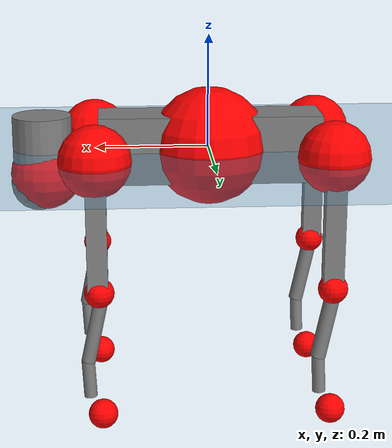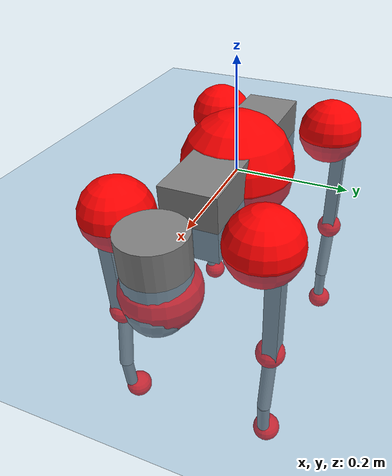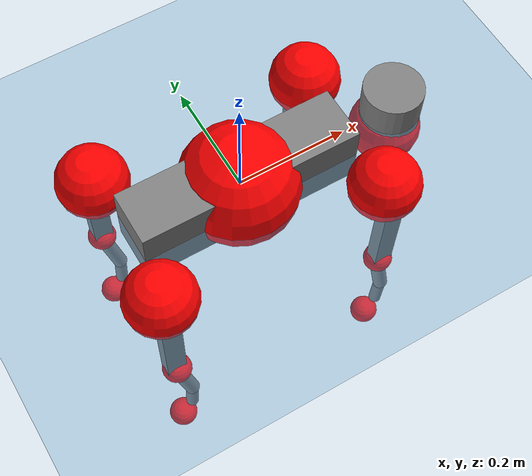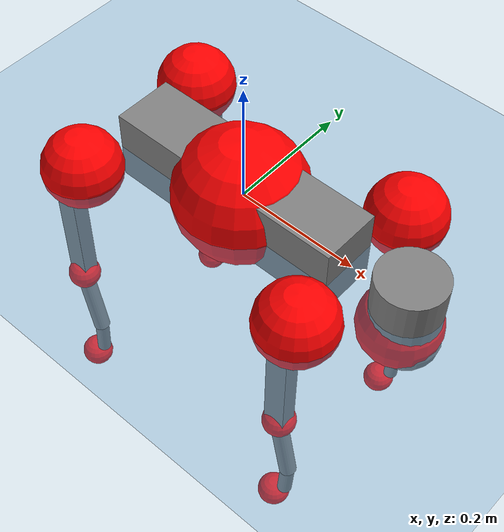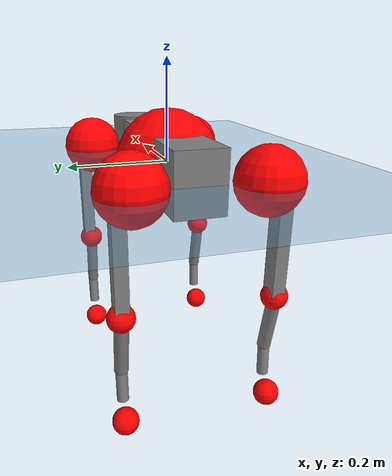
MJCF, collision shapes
<mujoco model="go2">
  <compiler angle="radian" assetdir="assets" balanceinertia="true" inertiafromgeom="false"/>

  <option timestep="0.005" density="1.2" viscosity="2e-05"/>

  <size nkey="1"/>

  <visual>
    <quality shadowsize="8192"/>
    <map shadowclip="0.5"/>
  </visual>

  <default>
    <default class="/">
      <geom contype="0" conaffinity="0" group="1" solref="-1000 -80"/>
      <site size="0.01 0.005 0.005" group="5"/>
      <general forcelimited="true" biastype="affine" gainprm="20" biasprm="0 -20 -0.5"/>
      <default class="go2">
        <joint armature="0.01" damping="0.01" frictionloss="0.2"/>
        <geom condim="1" margin="0.001"/>
        <default class="visual">
          <geom type="mesh" group="2"/>
        </default>
        <default class="collision">
          <geom group="3"/>
          <default class="foot">
            <geom size="0.022 0 0" condim="6" priority="1" friction="0.8 0.02 0.01" solimp="0.015 1 0.022"/>
          </default>
        </default>
        <default class="reward_collision_sphere">
          <geom group="5" rgba="1 0 0 1"/>
        </default>
      </default>
    </default>
  </default>

  <asset>
    <texture type="skybox" colorspace="auto" name="//unnamed_texture_0" builtin="gradient" rgb1="0.95 0.95 0.95" rgb2="0.95 0.95 0.95" width="100" height="600"/>
    <texture type="2d" colorspace="auto" name="texplane" builtin="checker" rgb1="0.345 0.575 0.748" rgb2="0.345 0.575 0.748" markrgb="1 1 1" width="512" height="512"/>
    <material name="MatPlane" class="/" texture="texplane" texuniform="true" texrepeat="2 2" specular="0.9"/>
    <material name="metal" class="/" rgba="0.9 0.95 0.95 1"/>
    <material name="black" class="/" rgba="0 0 0 1"/>
    <material name="white" class="/"/>
    <material name="gray" class="/" rgba="0.671705 0.692426 0.77427 1"/>
    <mesh name="base_0" class="/" file="base_0.obj"/>
    <mesh name="base_1" class="/" file="base_1.obj"/>
    <mesh name="base_2" class="/" file="base_2.obj"/>
    <mesh name="base_3" class="/" file="base_3.obj"/>
    <mesh name="base_4" class="/" file="base_4.obj"/>
    <mesh name="hip_0" class="/" file="hip_0.obj"/>
    <mesh name="hip_1" class="/" file="hip_1.obj"/>
    <mesh name="thigh_0" class="/" file="thigh_0.obj"/>
    <mesh name="thigh_1" class="/" file="thigh_1.obj"/>
    <mesh name="thigh_mirror_0" class="/" file="thigh_mirror_0.obj"/>
    <mesh name="thigh_mirror_1" class="/" file="thigh_mirror_1.obj"/>
    <mesh name="calf_0" class="/" file="calf_0.obj"/>
    <mesh name="calf_1" class="/" file="calf_1.obj"/>
    <mesh name="calf_mirror_0" class="/" file="calf_mirror_0.obj"/>
    <mesh name="calf_mirror_1" class="/" file="calf_mirror_1.obj"/>
    <mesh name="foot" class="/" file="foot.obj"/>
  </asset>

  <worldbody>
    <geom name="floor" class="/" size="100 100 0.125" type="plane" group="0" material="MatPlane"/>
    <light name="toplight_shadow" class="/" pos="0 0 5" dir="0.0990148 0.0990148 -0.990148" type="directional" ambient="0.04 0.04 0.04" diffuse="0.55 0.55 0.55" specular="0.12 0.12 0.12"/>
    <light name="toplight_fill" class="/" pos="0 0 5" dir="0.0990148 0.0990148 -0.990148" type="directional" castshadow="false" ambient="0.04 0.04 0.04" diffuse="0.3 0.3 0.3" specular="0.08 0.08 0.08"/>
    <body name="trunk" childclass="go2" pos="-0.0023292 -0.0006725 0.00183261" quat="1 -0.000371652 0.000399033 -4.56272e-05">
      <inertial pos="0.0281514 0.00326948 -0.0071073" quat="0.00556523 0.712326 -0.0121278 0.701722" mass="7.58857" diaginertia="0.131341 0.119219 0.0351855"/>
      <joint name="//unnamed_joint_0" type="free" armature="0" damping="0" frictionloss="0"/>
      <geom name="//unnamed_geom_1" class="visual" material="black" mesh="base_0"/>
      <geom name="//unnamed_geom_2" class="visual" material="black" mesh="base_1"/>
      <geom name="//unnamed_geom_3" class="visual" material="black" mesh="base_2"/>
      <geom name="//unnamed_geom_4" class="visual" material="white" mesh="base_3"/>
      <geom name="//unnamed_geom_5" class="visual" material="gray" mesh="base_4"/>
      <geom name="trunk_1" class="collision" size="0.197001 0.0489624 0.0596974" type="box"/>
      <geom name="trunk_2" class="collision" size="0.0523662 0.0471295" pos="0.296502 0 0.0106549" type="cylinder"/>
      <geom name="trunk_3" class="collision" size="0.0492242" pos="0.304824 0 -0.0639296"/>
      <geom name="//unnamed_geom_9" class="reward_collision_sphere" size="0.104732"/>
      <geom name="//unnamed_geom_10" class="reward_collision_sphere" size="0.0628394" pos="0.2913 0 -0.0479472"/>
      <site name="imu" pos="-0.0486791 -0.00198429 0.0669106" size="0.0104732"/>
      <camera name="track" pos="0 -2.07224 0" quat="0.707107 0.707107 0 0" mode="trackcom"/>
      <camera name="ego_camera" pos="0.324591 0 0.0479472" quat="-0.5 -0.5 0.5 0.5"/>
      <body name="FL_hip" pos="0.203174 0.0508241 0.00239276" quat="0.999999 0.00053488 0.000587874 0.000849442">
        <inertial pos="-0.00552252 0.00389857 -0.00157007" quat="0.496859 0.499583 0.50553 0.497984" mass="0.845219" diaginertia="0.00115705 0.000791631 0.00070643"/>
        <joint name="FL_hip_joint" pos="0 0 0" axis="0.999995 -0.0027702 0.00115218" stiffness="0.00514015" range="-1.05302 1.07434" armature="0.0108432" damping="0.00713254" frictionloss="0.219021"/>
        <geom name="//unnamed_geom_11" class="visual" material="metal" mesh="hip_0"/>
        <geom name="//unnamed_geom_12" class="visual" material="gray" mesh="hip_1"/>
        <geom name="//unnamed_geom_13" class="collision" size="0.0481769 0.0209465" pos="0 0.0828896 0" quat="0.707107 0.707107 0 0" type="cylinder"/>
        <geom name="//unnamed_geom_14" class="reward_collision_sphere" size="0.0628394" pos="0 0.0725284 0"/>
        <body name="FL_thigh" pos="-0.000181034 0.093845 2.4069e-05" quat="0.999998 0.000475565 0.00125932 -0.00144443">
          <inertial pos="-0.00312885 -0.023635 -0.0345943" quat="0.829418 0.0837914 -0.00946832 0.552227" mass="1.31548" diaginertia="0.00710401 0.00730293 0.00121212"/>
          <joint name="FL_thigh_joint" pos="0 0 0" axis="-0.00846416 0.999956 -0.00399967" range="-1.6406 3.47417" armature="0.00929514" damping="0" frictionloss="0.208807"/>
          <geom name="//unnamed_geom_15" class="visual" material="metal" mesh="thigh_0"/>
          <geom name="//unnamed_geom_16" class="visual" material="gray" mesh="thigh_1"/>
          <geom name="//unnamed_geom_17" class="collision" size="0.11154 0.0128297 0.0178045" pos="0 0 -0.113475" quat="0.707107 0 0.707107 0" type="box"/>
          <body name="FL_calf" pos="-0.0023239 -0.00372292 -0.227881" quat="0.999999 0.000237503 -0.000779231 -0.000807032">
            <inertial pos="0.00706976 0.00191675 -0.151211" quat="0.710445 0.00131125 -0.00450302 0.703738" mass="0.26639" diaginertia="0.0018234 0.00173424 7.29287e-05"/>
            <joint name="FL_calf_joint" pos="0 0 0" axis="0.00539748 0.999985 0.000473389" stiffness="0.0161469" range="-2.73774 -0.843525" armature="0.0114049" damping="0.0101896" frictionloss="0.206539"/>
            <geom name="//unnamed_geom_18" class="visual" material="gray" mesh="calf_0"/>
            <geom name="//unnamed_geom_19" class="visual" material="black" mesh="calf_1"/>
            <geom name="FL_calf0" class="collision" size="0.0125679 0.0628394" pos="0.00832285 0 -0.0639296" quat="0.994493 0 -0.104807 0" type="cylinder"/>
            <geom name="//unnamed_geom_21" class="collision" size="0.0115206 0.034038" pos="0.0208071 0 -0.157693" quat="0.999688 0 0.0249974 0" type="cylinder"/>
            <geom name="//unnamed_geom_22" class="visual" pos="0 0 -0.22695" quat="1 0 0 0" material="black" mesh="foot"/>
            <geom name="FL_foot" class="foot" size="0.0214791" pos="-0.00208071 0 -0.22695"/>
            <geom name="//unnamed_geom_24" class="reward_collision_sphere" size="0.0261831"/>
            <geom name="//unnamed_geom_25" class="reward_collision_sphere" size="0.0261831" pos="-0.00208071 0 -0.22695"/>
            <site name="FL_foot" class="foot" pos="-0.00208071 0 -0.22695" size="0.0104732"/>
          </body>
        </body>
      </body>
      <body name="FR_hip" pos="0.205907 -0.0476002 -0.00168364" quat="1 0.000141582 0.000210247 3.99582e-05">
        <inertial pos="-0.00508524 0.00453235 0.000570152" quat="0.512656 0.50252 0.508244 0.475758" mass="0.7866" diaginertia="0.00114218 0.000693886 0.000694429"/>
        <joint name="FR_hip_joint" pos="0 0 0" axis="0.999909 0.0128453 -0.00419096" stiffness="0.0102722" range="-0.998942 1.06976" armature="0.00978442" damping="0.0189975" frictionloss="0.227206"/>
        <geom name="//unnamed_geom_26" class="visual" pos="0 -2.55881e-10 -1.09753e-08" quat="4.63268e-05 1 0 0" material="metal" mesh="hip_0"/>
        <geom name="//unnamed_geom_27" class="visual" pos="0 -4.14814e-10 2.71461e-08" quat="4.63268e-05 1 0 0" material="gray" mesh="hip_1"/>
        <geom name="//unnamed_geom_28" class="collision" size="0.0481769 0.0209465" pos="0 -0.0828896 0" quat="0.707107 0.707107 0 0" type="cylinder"/>
        <geom name="//unnamed_geom_29" class="reward_collision_sphere" size="0.0628394" pos="0 -0.0725284 0"/>
        <body name="FR_thigh" pos="0.000238948 -0.0987712 0.00367471" quat="0.999999 -0.000462499 0.00108542 -0.000989752">
          <inertial pos="-0.00858136 0.0211418 -0.0348133" quat="0.551529 -0.0198429 0.0841093 0.829667" mass="1.24741" diaginertia="0.00707789 0.0070018 0.00110457"/>
          <joint name="FR_thigh_joint" pos="0 0 0" axis="0.00350596 -0.999989 0.00299248" range="-3.45433 1.5187" armature="0.0108173" damping="0.00289667" frictionloss="0.223357"/>
          <geom name="//unnamed_geom_30" class="visual" material="metal" mesh="thigh_mirror_0"/>
          <geom name="//unnamed_geom_31" class="visual" material="gray" mesh="thigh_mirror_1"/>
          <geom name="//unnamed_geom_32" class="collision" size="0.11154 0.0128297 0.0178045" pos="0 0 -0.113475" quat="0.707107 0 0.707107 0" type="box"/>
          <body name="FR_calf" pos="-0.000176765 0.00139945 -0.224701" quat="1 -1.23153e-05 1.14817e-05 -6.07155e-06">
            <inertial pos="0.00856145 0.000728444 -0.151388" quat="0.686003 -0.0143734 -0.00266184 0.727452" mass="0.269311" diaginertia="0.00179639 0.00167795 7.02598e-05"/>
            <joint name="FR_calf_joint" pos="0 0 0" axis="0.00396343 -0.999911 -0.0127392" stiffness="0.0217511" range="0.93135 2.72521" armature="0.00911663" damping="0" frictionloss="0.22071"/>
            <geom name="//unnamed_geom_33" class="visual" material="gray" mesh="calf_mirror_0"/>
            <geom name="//unnamed_geom_34" class="visual" material="black" mesh="calf_mirror_1"/>
            <geom name="FR_calf0" class="collision" size="0.0136152 0.0628394" pos="0.0104036 0 -0.0639296" quat="0.995004 0 -0.0998334 0" type="cylinder"/>
            <geom name="//unnamed_geom_36" class="collision" size="0.0115206 0.034038" pos="0.0208071 0 -0.157693" quat="0.999688 0 0.0249974 0" type="cylinder"/>
            <geom name="//unnamed_geom_37" class="visual" pos="0 0 -0.22695" quat="1 0 0 0" material="black" mesh="foot"/>
            <geom name="FR_foot" class="foot" size="0.0252856" pos="-0.00208071 0 -0.22695"/>
            <geom name="//unnamed_geom_39" class="reward_collision_sphere" size="0.0261831"/>
            <geom name="//unnamed_geom_40" class="reward_collision_sphere" size="0.0261831" pos="-0.00208071 0 -0.22695"/>
            <site name="FR_foot" class="foot" pos="-0.00208071 0 -0.22695" size="0.0104732"/>
          </body>
        </body>
      </body>
      <body name="RL_hip" pos="-0.204726 0.0490958 0.00379814" quat="1 -0.000152353 0.000287107 0.000209821">
        <inertial pos="0.00573635 0.00108672 0.00576318" quat="0.50833 0.490032 0.494479 0.506913" mass="0.729261" diaginertia="0.000930713 0.000648925 0.000617282"/>
        <joint name="RL_hip_joint" pos="0 0 0" axis="-0.99992 -0.00716881 -0.0104029" range="-1.03789 1.08229" armature="0.00932253" damping="0.0298098" frictionloss="0.205774"/>
        <geom name="//unnamed_geom_41" class="visual" pos="2.18978e-10 0 4.29248e-08" quat="4.63268e-05 0 1 0" material="metal" mesh="hip_0"/>
        <geom name="//unnamed_geom_42" class="visual" pos="3.5499e-10 0 3.80681e-08" quat="4.63268e-05 0 1 0" material="gray" mesh="hip_1"/>
        <geom name="//unnamed_geom_43" class="collision" size="0.0481769 0.0209465" pos="0 0.0828896 0" quat="0.707107 0.707107 0 0" type="cylinder"/>
        <geom name="//unnamed_geom_44" class="reward_collision_sphere" size="0.0628394" pos="0 0.0725284 0"/>
        <body name="RL_thigh" pos="0.000475241 0.0969125 2.55808e-05" quat="1 7.39631e-05 -0.000575213 -0.000551967">
          <inertial pos="0.00233906 -0.0210858 -0.0297709" quat="0.828264 0.085328 -0.0190961 0.553473" mass="1.3208" diaginertia="0.00789364 0.00697625 0.00125178"/>
          <joint name="RL_thigh_joint" pos="0 0 0" axis="-0.00975885 0.999725 0.0213463" range="-0.534446 4.55528" armature="0.0117867" damping="0.0180227" frictionloss="0.212521"/>
          <geom name="//unnamed_geom_45" class="visual" material="metal" mesh="thigh_0"/>
          <geom name="//unnamed_geom_46" class="visual" material="gray" mesh="thigh_1"/>
          <geom name="//unnamed_geom_47" class="collision" size="0.11154 0.0128297 0.0178045" pos="0 0 -0.113475" quat="0.707107 0 0.707107 0" type="box"/>
          <body name="RL_calf" pos="-0.000959351 0.00035238 -0.2284" quat="1 -0.00044868 0.000254682 1.00398e-05">
            <inertial pos="0.00705214 -0.0042505 -0.152709" quat="0.711607 8.53585e-05 -0.00602218 0.702552" mass="0.255626" diaginertia="0.00169197 0.00154195 6.89197e-05"/>
            <joint name="RL_calf_joint" pos="0 0 0" axis="0.00359729 0.999904 0.0133971" stiffness="0.00301125" range="-2.78771 -0.812263" armature="0.00815293" damping="0" frictionloss="0.238382"/>
            <geom name="//unnamed_geom_48" class="visual" material="gray" mesh="calf_0"/>
            <geom name="//unnamed_geom_49" class="visual" material="black" mesh="calf_1"/>
            <geom name="RL_calf0" class="collision" size="0.0136152 0.0628394" pos="0.0104036 0 -0.0639296" quat="0.995004 0 -0.0998334 0" type="cylinder"/>
            <geom name="//unnamed_geom_51" class="collision" size="0.0115206 0.034038" pos="0.0208071 0 -0.157693" quat="0.999688 0 0.0249974 0" type="cylinder"/>
            <geom name="//unnamed_geom_52" class="visual" pos="0 0 -0.22695" quat="1 0 0 0" material="black" mesh="foot"/>
            <geom name="RL_foot" class="foot" size="0.021532" pos="-0.00208071 0 -0.22695"/>
            <geom name="//unnamed_geom_54" class="reward_collision_sphere" size="0.0261831"/>
            <geom name="//unnamed_geom_55" class="reward_collision_sphere" size="0.0261831" pos="-0.00208071 0 -0.22695"/>
            <site name="RL_foot" class="foot" pos="-0.00208071 0 -0.22695" size="0.0104732"/>
          </body>
        </body>
      </body>
      <body name="RR_hip" pos="-0.207445 -0.0465475 0.00138354" quat="0.999999 -0.00102182 -0.000390738 0.000632598">
        <inertial pos="0.00582315 -0.00165904 0.00479319" quat="0.504896 0.511877 0.470271 0.511769" mass="0.807472" diaginertia="0.00114887 0.00076132 0.000710442"/>
        <joint name="RR_hip_joint" pos="0 0 0" axis="-0.999775 -0.0194953 -0.00833258" stiffness="0.00121386" range="-0.972416 1.05716" armature="0.00967253" damping="0.0077421" frictionloss="0.212045"/>
        <geom name="//unnamed_geom_56" class="visual" pos="-2.19125e-10 -2.55881e-10 5.39e-08" quat="2.14617e-09 4.63268e-05 4.63268e-05 -1" material="metal" mesh="hip_0"/>
        <geom name="//unnamed_geom_57" class="visual" pos="-3.54627e-10 -4.14814e-10 1.09221e-08" quat="2.14617e-09 4.63268e-05 4.63268e-05 -1" material="gray" mesh="hip_1"/>
        <geom name="//unnamed_geom_58" class="collision" size="0.0481769 0.0209465" pos="0 -0.0828896 0" quat="0.707107 0.707107 0 0" type="cylinder"/>
        <geom name="//unnamed_geom_59" class="reward_collision_sphere" size="0.0628394" pos="0 -0.0725284 0"/>
        <body name="RR_thigh" pos="-0.00521145 -0.0980819 0.00394375" quat="0.999999 -0.000370708 -0.0014108 -0.00070199">
          <inertial pos="-0.00369008 0.0230564 -0.0324174" quat="0.553608 -0.0180875 0.0843048 0.828302" mass="1.36236" diaginertia="0.00747243 0.00687436 0.00118124"/>
          <joint name="RR_thigh_joint" pos="0 0 0" axis="-0.00693047 -0.999959 -0.00584524" range="-4.54136 0.48145" armature="0.00919301" damping="0.0110937" frictionloss="0.217838"/>
          <geom name="//unnamed_geom_60" class="visual" material="metal" mesh="thigh_mirror_0"/>
          <geom name="//unnamed_geom_61" class="visual" material="gray" mesh="thigh_mirror_1"/>
          <geom name="//unnamed_geom_62" class="collision" size="0.11154 0.0128297 0.0178045" pos="0 0 -0.113475" quat="0.707107 0 0.707107 0" type="box"/>
          <body name="RR_calf" pos="0.00284211 -0.0033176 -0.230271" quat="0.999997 -0.00215354 -0.000139725 0.000650312">
            <inertial pos="0.00395993 -0.000351181 -0.148496" quat="0.705617 -0.00468686 -0.00808175 0.708532" mass="0.269104" diaginertia="0.00179606 0.00174511 7.17186e-05"/>
            <joint name="RR_calf_joint" pos="0 0 0" axis="-0.00400308 -0.999992 -0.000330591" stiffness="0.0089903" range="0.819094 2.64395" armature="0.0104075" damping="0" frictionloss="0.221154"/>
            <geom name="//unnamed_geom_63" class="visual" material="gray" mesh="calf_mirror_0"/>
            <geom name="//unnamed_geom_64" class="visual" material="black" mesh="calf_mirror_1"/>
            <geom name="RR_calf0" class="collision" size="0.0136152 0.0628394" pos="0.0104036 0 -0.0639296" quat="0.995004 0 -0.0998334 0" type="cylinder"/>
            <geom name="//unnamed_geom_66" class="collision" size="0.0115206 0.034038" pos="0.0208071 0 -0.157693" quat="0.999688 0 0.0249974 0" type="cylinder"/>
            <geom name="//unnamed_geom_67" class="visual" pos="0 0 -0.22695" quat="1 0 0 0" material="black" mesh="foot"/>
            <geom name="RR_foot" class="foot" size="0.0242646" pos="-0.00208071 0 -0.22695"/>
            <geom name="//unnamed_geom_69" class="reward_collision_sphere" size="0.0261831"/>
            <geom name="//unnamed_geom_70" class="reward_collision_sphere" size="0.0261831" pos="-0.00208071 0 -0.22695"/>
            <site name="RR_foot" class="foot" pos="-0.00208071 0 -0.22695" size="0.0104732"/>
          </body>
        </body>
      </body>
    </body>
  </worldbody>

  <contact>
    <pair class="/" geom1="floor" geom2="FL_foot" name="//unnamed_contact_0"/>
    <pair class="/" geom1="floor" geom2="FR_foot" name="//unnamed_contact_1"/>
    <pair class="/" geom1="floor" geom2="RL_foot" name="//unnamed_contact_2"/>
    <pair class="/" geom1="floor" geom2="RR_foot" name="//unnamed_contact_3"/>
  </contact>

  <actuator>
    <general name="FL_hip" class="/" joint="FL_hip_joint" forcerange="-26.8103 26.8103" gainprm="20.949" biasprm="0 -20.949 -0.522265"/>
    <general name="FL_thigh" class="/" joint="FL_thigh_joint" forcerange="-29.4121 29.4121" gainprm="20.949" biasprm="0 -20.949 -0.522265"/>
    <general name="FL_calf" class="/" joint="FL_calf_joint" forcerange="-44.1896 44.1896" gainprm="20.949" biasprm="0 -20.949 -0.522265"/>
    <general name="FR_hip" class="/" joint="FR_hip_joint" forcerange="-24.9799 24.9799" gainprm="20.949" biasprm="0 -20.949 -0.522265"/>
    <general name="FR_thigh" class="/" joint="FR_thigh_joint" forcerange="-23.5902 23.5902" gainprm="20.949" biasprm="0 -20.949 -0.522265"/>
    <general name="FR_calf" class="/" joint="FR_calf_joint" forcerange="-43.0657 43.0657" gainprm="20.949" biasprm="0 -20.949 -0.522265"/>
    <general name="RL_hip" class="/" joint="RL_hip_joint" forcerange="-25.483 25.483" gainprm="20.949" biasprm="0 -20.949 -0.522265"/>
    <general name="RL_thigh" class="/" joint="RL_thigh_joint" forcerange="-26.366 26.366" gainprm="20.949" biasprm="0 -20.949 -0.522265"/>
    <general name="RL_calf" class="/" joint="RL_calf_joint" forcerange="-50.5923 50.5923" gainprm="20.949" biasprm="0 -20.949 -0.522265"/>
    <general name="RR_hip" class="/" joint="RR_hip_joint" forcerange="-22.7756 22.7756" gainprm="20.949" biasprm="0 -20.949 -0.522265"/>
    <general name="RR_thigh" class="/" joint="RR_thigh_joint" forcerange="-21.7847 21.7847" gainprm="20.949" biasprm="0 -20.949 -0.522265"/>
    <general name="RR_calf" class="/" joint="RR_calf_joint" forcerange="-52.2932 52.2932" gainprm="20.949" biasprm="0 -20.949 -0.522265"/>
  </actuator>

  <sensor>
    <gyro site="imu" name="imu_angular_velocity"/>
    <velocimeter site="imu" name="imu_linear_velocity"/>
    <framelinvel objtype="site" objname="FL_foot" name="FL_foot_global_linear_velocity"/>
    <framelinvel objtype="site" objname="FR_foot" name="FR_foot_global_linear_velocity"/>
    <framelinvel objtype="site" objname="RL_foot" name="RL_foot_global_linear_velocity"/>
    <framelinvel objtype="site" objname="RR_foot" name="RR_foot_global_linear_velocity"/>
  </sensor>

  <keyframe>
    <key name="home" qpos="0 0 0.325 1 0 0 0 0.1 0.8 -1.5 -0.1 -0.8 1.5 -0.1 0.8 -1.5 0.1 -0.8 1.5"/>
  </keyframe>
</mujoco>
